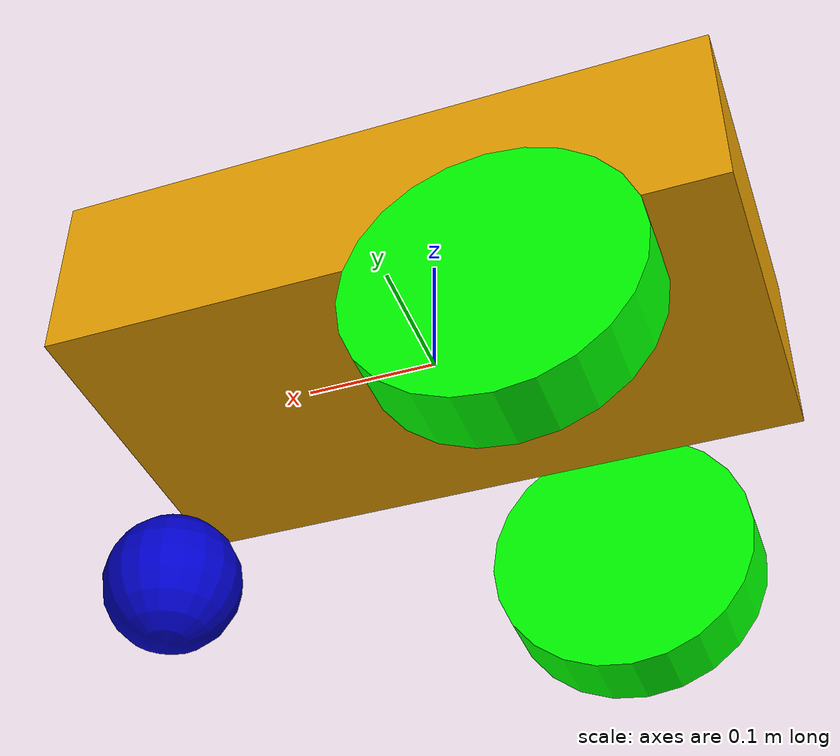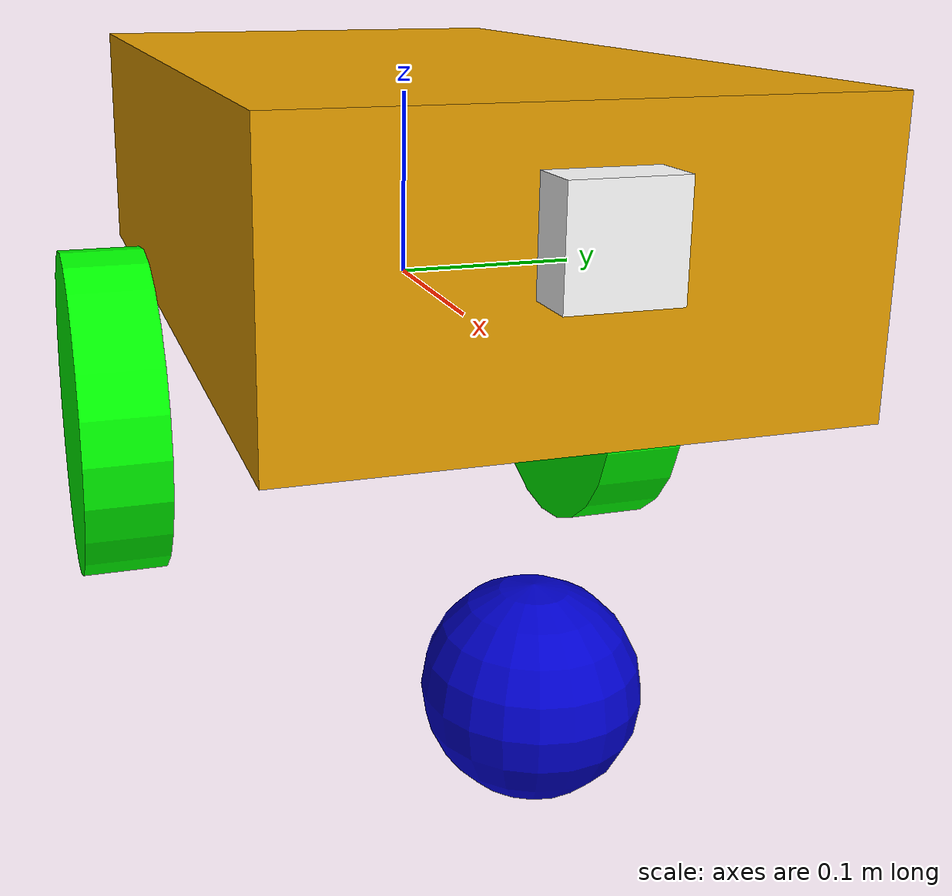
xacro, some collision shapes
<?xml version="1.0"?>
<robot name="red_pioneer" xmlns:xacro="http://ros.org/wiki/xacro">

    <xacro:property name="wheel_radius" value="0.1"/>
    <xacro:property name="wheel_length" value="0.05"/>
    <xacro:property name="body_length" value="0.497"/>
    <xacro:property name="body_hight" value="0.14"/>
    <xacro:property name="body_breadth" value="0.267"/>
    <xacro:property name="front_wheel_radius" value="0.05"/>

    <!--for rviz-->
    <material name="blue">
        <color rgba="0 0 0.8 1"/>
    </material>
    <material name="green">
        <color rgba="0.0 1.0 0.0 1.0"/>
    </material>
    <material name="white">
        <color rgba="1 1 1 1"/>
    </material>

    <!--for Gazebo-->
    <gazebo reference="left_wheel">
        <material>Gazebo/Green</material>
    </gazebo>

    <gazebo reference="right_wheel">
        <material>Gazebo/Green</material>
    </gazebo>

    <gazebo reference="front_wheel">
        <material>Gazebo/Blue</material>
    </gazebo>

    <xacro:macro name="default_inertial" params="mass">
        <inertial>
            <mass value="${mass}" />
            <inertia ixx="0.1" ixy="0.0" ixz="0.0" iyy="0.1" iyz="0.0" izz="0.1" />
        </inertial>
    </xacro:macro>

    <link name="base_link">
        <visual>
        <geometry>
            <mesh filename="package://pioneer/meshes/chassis.dae"/>
        </geometry>
        </visual>
        <collision>
            <geometry>
                <box size="${body_length} ${body_breadth} ${body_hight}"/>
            </geometry>
            <origin xyz="0 0 0.05"/>
        </collision>
        <xacro:default_inertial mass="1"/>
    </link>

    <!--боковые колеса-->
    <xacro:macro name="wheel" params="side direction">
        <link name="${side}_wheel">
            <visual>
                <origin xyz="0 0 0" rpy="0 1.5708 0" /> <!--вертик-->
                <geometry>
                    <cylinder radius="${wheel_radius}" length="${wheel_length}"/>
                </geometry>
                <material name="green"/>
            </visual>
            <collision>
                <origin xyz="0 0 0" rpy="0 1.5708 0" />
                <geometry>
                    <cylinder radius="${wheel_radius}" length="${wheel_length}"/>
                </geometry>
            </collision>
            <xacro:default_inertial mass="1"/>
        </link>

        <joint name="${side}_wheel_joint" type="continuous">
            <parent link="base_link"/>
            <child link="${side}_wheel"/>
            <origin xyz="-0.1 ${direction * (body_breadth+wheel_length)/2}  -${wheel_radius}" rpy="0 0 ${direction * 1.5708}"/>
        </joint>
    </xacro:macro>

    <xacro:wheel side="left" direction="1"/>
    <xacro:wheel side="right" direction="-1"/>

   <!--вертик о-->
    <link name="front_wheel_yaw_link">
        <inertial>
            <mass value="0.001"/>
            <inertia ixx="0.0001" ixy="0" ixz="0" iyy="0.0001" iyz="0" izz="0.0001"/>
        </inertial>
    </link>

    <joint name="front_wheel_yaw_joint" type="revolute">
        <parent link="base_link"/>
        <child link="front_wheel_yaw_link"/>
        <origin xyz="${body_length/2-front_wheel_radius} 0 -${2*wheel_radius-front_wheel_radius}" rpy="0 0 0"/>
        <axis xyz="0 0 1"/>
        <limit lower="-3.14" upper="3.14" effort="10" velocity="1"/>
    </joint>

    <!--uоризонтальной о + колесо -->
    <link name="front_wheel">
        <visual>
            <origin xyz="0 0 0" rpy="0 0 0"/>
            <geometry>
                <sphere radius="${front_wheel_radius}"/>
            </geometry>
            <material name="blue"/>
        </visual>
        <collision>
            <origin xyz="0 0 0"/>
            <geometry>
                <sphere radius="${front_wheel_radius}"/>
            </geometry>
        </collision>
        <xacro:default_inertial mass="0.5"/>
    </link>

    <joint name="front_wheel_pitch_joint" type="revolute">
        <parent link="front_wheel_yaw_link"/>
        <child link="front_wheel"/>
        <origin xyz="0 0 0"/>
        <axis xyz="0 1 0"/>
        <limit lower="-3.14" upper="3.14" effort="10" velocity="1"/>
    </joint>

    <!-- Камера -->
    <link name="camera_link">
        <visual>
            <geometry>
                <box size="0.05 0.05 0.05"/>
            </geometry>
            <material name="white"/>
        </visual>
        <collision>
            <geometry>
                <box size="0.05 0.05 0.05"/>
            </geometry>
        </collision>
        <inertial>
            <mass value="0.1"/>
            <inertia ixx="0.01" ixy="0.0" ixz="0.0" iyy="0.01" iyz="0.0" izz="0.01"/>
        </inertial>
    </link>

    <joint name="camera_joint" type="fixed">
        <parent link="base_link"/>
        <child link="camera_link"/>
        <origin xyz="${body_length/2} 0 ${body_hight/2}" rpy="0 0 0"/>
    </joint>

    <!--в Gazebo -->
    <gazebo reference="camera_link">
    <sensor type="depth" name="realsense_R200">
      <always_on>true</always_on>
      <visualize>$(arg camera_visual)</visualize>
      <camera>
          <horizontal_fov>1.3439</horizontal_fov>
          <image>
              <width>1920</width>
              <height>1080</height>
              <format>R8G8B8</format>
          </image>
          <depth_camera></depth_camera>
          <clip>
              <near>0.03</near>
              <far>100</far>
          </clip>
      </camera>
      <plugin name="camera_controller" filename="libgazebo_ros_openni_kinect.so">
        <baseline>0.2</baseline>
        <alwaysOn>true</alwaysOn>
        <updateRate>30.0</updateRate>
        <cameraName>camera</cameraName>
        <frameName>camera_rgb_optical_frame</frameName>
        <imageTopicName>rgb/image_raw</imageTopicName>
        <depthImageTopicName>depth/image_raw</depthImageTopicName>
        <pointCloudTopicName>depth/points</pointCloudTopicName>
        <cameraInfoTopicName>rgb/camera_info</cameraInfoTopicName>
        <depthImageCameraInfoTopicName>depth/camera_info</depthImageCameraInfoTopicName>
        <pointCloudCutoff>0.4</pointCloudCutoff>
            <hackBaseline>0.07</hackBaseline>
            <distortionK1>0.0</distortionK1>
            <distortionK2>0.0</distortionK2>
            <distortionK3>0.0</distortionK3>
            <distortionT1>0.0</distortionT1>
            <distortionT1>0.0</distortionT1>
            <distortionT2>0.0</distortionT2>
        <CxPrime>0.0</CxPrime>
        <Cx>0.0</Cx>
        <Cy>0.0</Cy>
        <focalLength>0</focalLength>
        <hackBaseline>0</hackBaseline>
      </plugin>
    </sensor>
  </gazebo>
    <!-- IMU Link -->
<link name="imu_link">
    <inertial>
        <mass value="0.01"/>
        <inertia ixx="0.0001" ixy="0" ixz="0" iyy="0.0001" iyz="0" izz="0.0001"/>
    </inertial>
    <!-- Визуализация IMU (не обязательна) -->
    <visual>
        <geometry>
            <box size="0.01 0.01 0.01"/>
        </geometry>
        <material name="blue"/>
    </visual>
</link>

<!-- Joint to attach IMU to base_link -->
<joint name="imu_joint" type="fixed">
    <parent link="base_link"/>
    <child link="imu_link"/>
    <origin xyz="0 0 ${body_hight / 2}" rpy="0 0 0"/> <!-- центр сверху -->
</joint>

<!-- IMU Sensor in Gazebo -->

  <gazebo reference="imu_link">
    <sensor type="imu" name="imu">
      <always_on>true</always_on>
      <visualize>$(arg imu_visual)</visualize>
    </sensor>
    <material>Gazebo/FlatBlack</material>

    <plugin name="imu_plugin" filename="libgazebo_ros_imu.so">
      <alwaysOn>true</alwaysOn>
      <bodyName>imu_link</bodyName>
      <frameName>imu_link</frameName>
      <topicName>imu</topicName>
      <serviceName>imu_service</serviceName>
      <gaussianNoise>0.0</gaussianNoise>
      <updateRate>0</updateRate>
      <imu>
        <noise>
          <type>gaussian</type>
          <rate>
            <mean>0.0</mean>
            <stddev>2e-4</stddev>
            <bias_mean>0.0000075</bias_mean>
            <bias_stddev>0.0000008</bias_stddev>
          </rate>
          <accel>
            <mean>0.0</mean>
            <stddev>1.7e-2</stddev>
            <bias_mean>0.1</bias_mean>
            <bias_stddev>0.001</bias_stddev>
          </accel>
        </noise>
      </imu>
    </plugin>
  </gazebo>
</robot>
